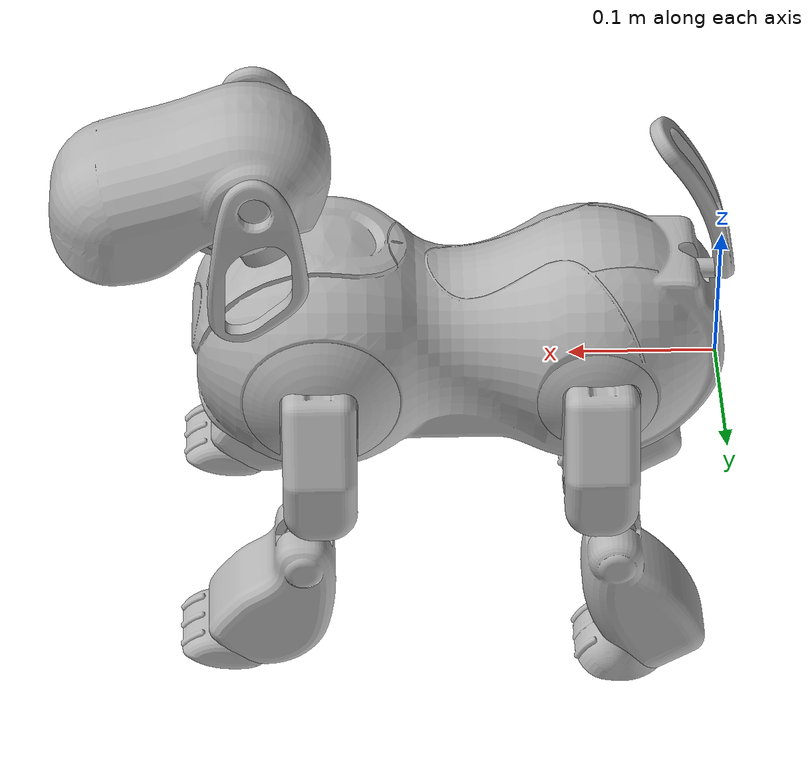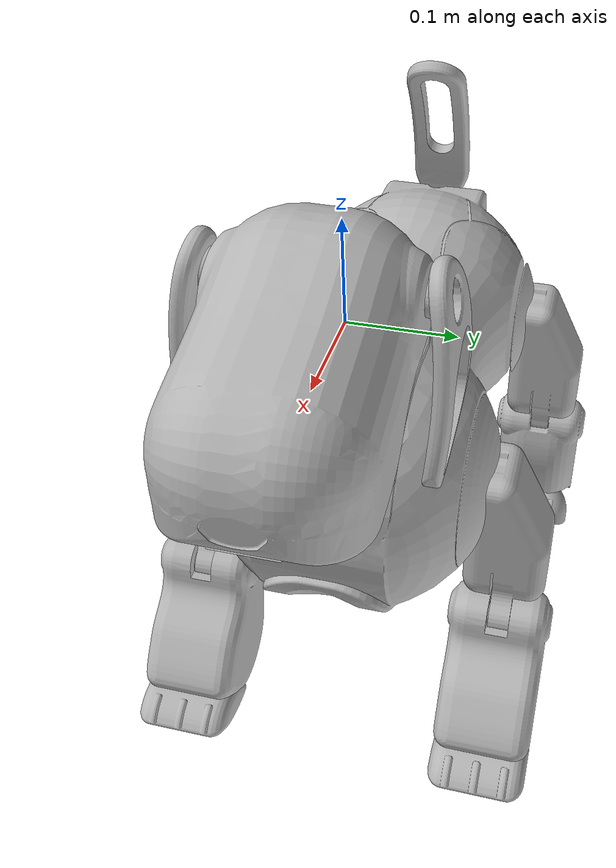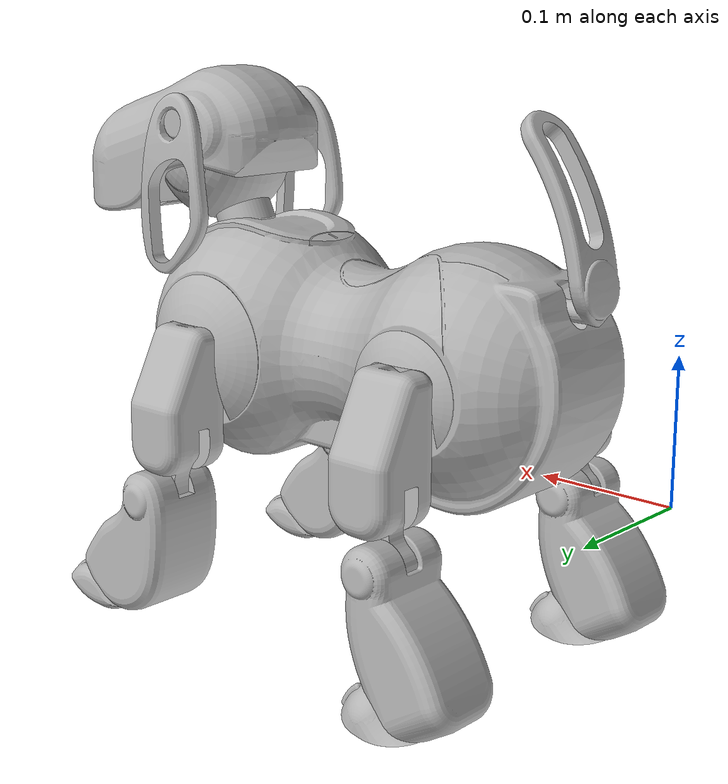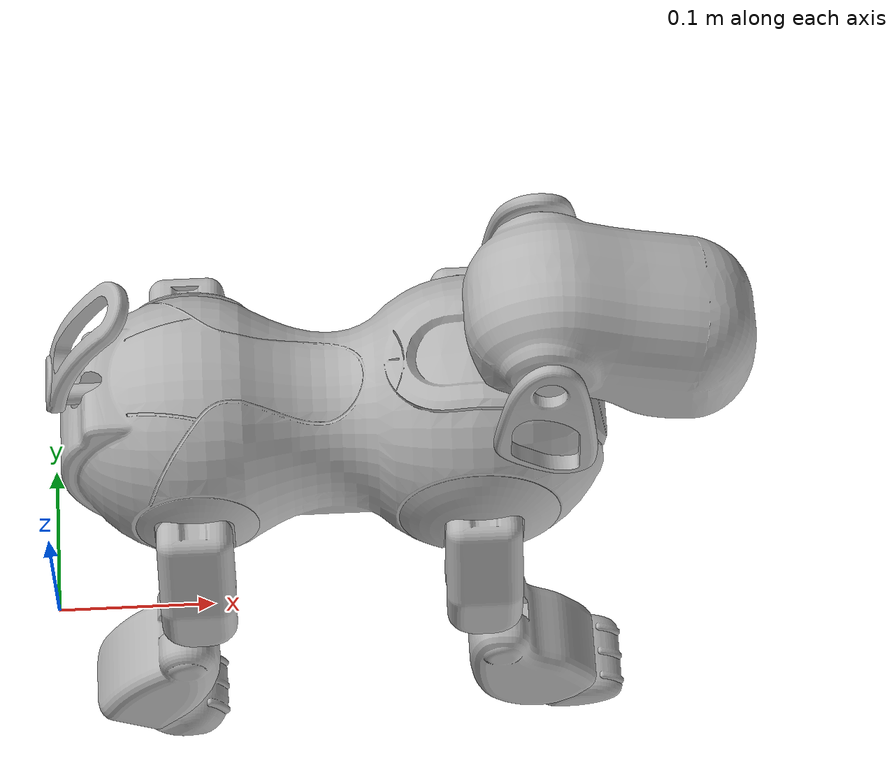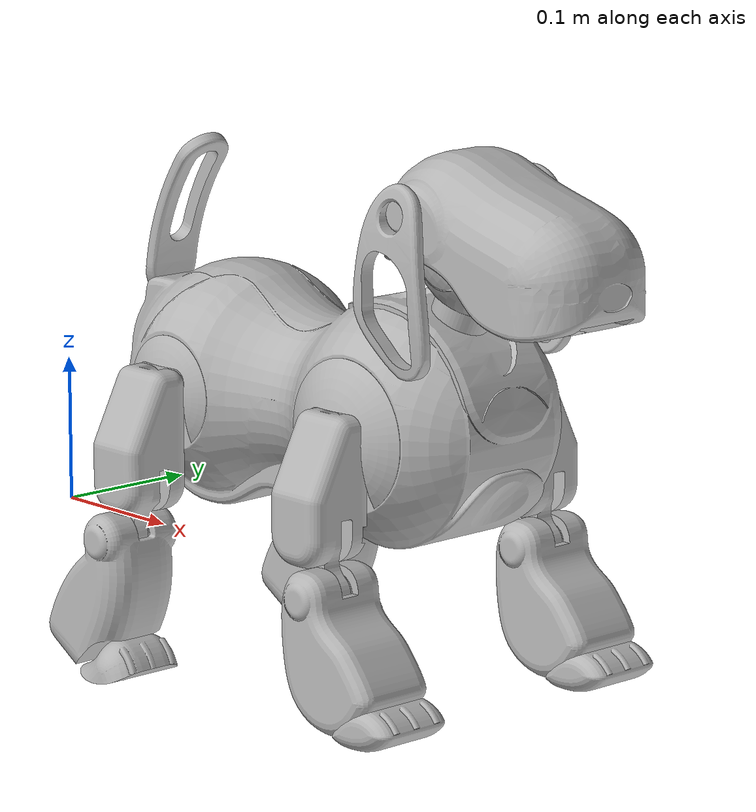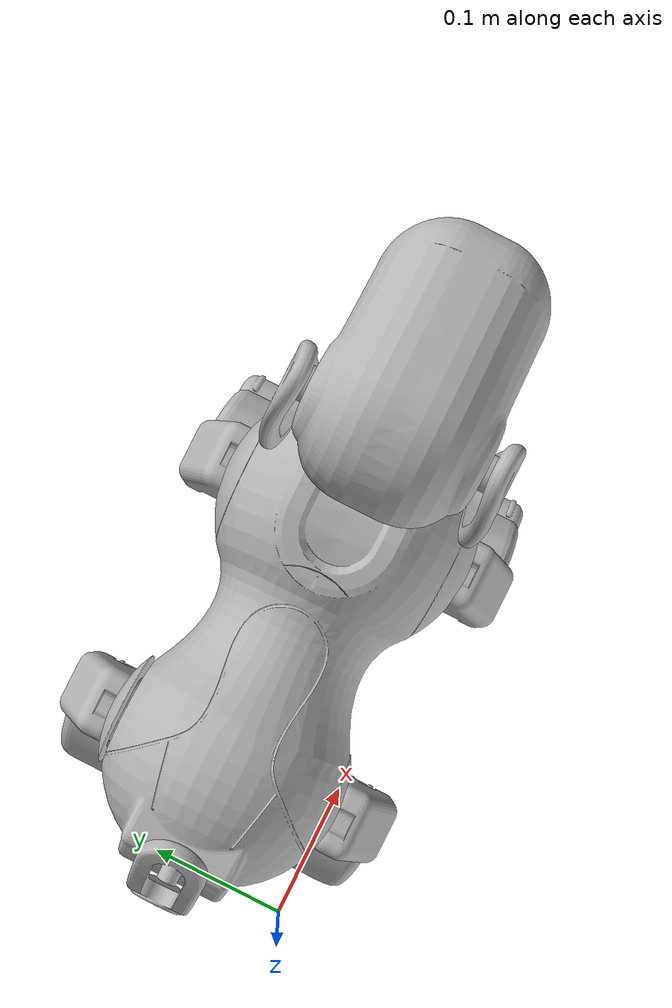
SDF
<sdf version='1.5'>
  <model name='aiboERS7'>
    <link name='body'>
      <pose>0 0 0 0 -0 0</pose>
      <inertial>
        <pose>0.175 0.08298 0.09 0 -0 0</pose>
        <mass>0.613</mass>
        <inertia>
          <ixx>0.00247501</ixx>
          <ixy>0</ixy>
          <ixz>0</ixz>
          <iyy>0.00750664</iyy>
          <iyz>0</iyz>
          <izz>0.0071137</izz>
        </inertia>
      </inertial>
      <collision name='body_collision'>
        <pose>0 0 0 0 -0 0</pose>
        <geometry>
          <mesh>
            <scale>1 1 1</scale>
            <uri>model://aiboers7_description/meshes/body_simple.stl</uri>
          </mesh>
        </geometry>
      </collision>
      <visual name='body_visual'>
        <pose>0 0 0 0 -0 0</pose>
        <geometry>
          <mesh>
            <scale>1 1 1</scale>
            <uri>model://aiboers7_description/meshes/body.STL</uri>
          </mesh>
        </geometry>
      </visual>
    </link>
    <link name='LB_shoulder'>
      <pose>0.09325 0.136 0.0892 0 -0 0</pose>
      <inertial>
        <pose>0.003468 0.001798 -0.009007 0 -0 0</pose>
        <mass>0.05</mass>
        <inertia>
          <ixx>2.21195e-05</ixx>
          <ixy>0</ixy>
          <ixz>0</ixz>
          <iyy>4.70686e-05</iyy>
          <iyz>0</iyz>
          <izz>2.55456e-05</izz>
        </inertia>
      </inertial>
      <collision name='LB_shoulder_collision'>
        <pose>-0.0395 0.02956 0.039 3.14159 -0 0</pose>
        <geometry>
          <mesh>
            <scale>1 1 1</scale>
            <uri>model://aiboers7_description/meshes/LB_shoulder_simple.stl</uri>
          </mesh>
        </geometry>
      </collision>
      <visual name='LB_shoulder_visual'>
        <pose>-0.0395 0.02956 0.039 3.14159 -0 0</pose>
        <geometry>
          <mesh>
            <scale>1 1 1</scale>
            <uri>model://aiboers7_description/meshes/LB_shoulder.STL</uri>
          </mesh>
        </geometry>
      </visual>
    </link>
    <joint name='legLB1' type='revolute'>
      <child>LB_shoulder</child>
      <parent>body</parent>
      <axis>
        <xyz>0 1 0</xyz>
        <limit>
          <lower>-2.3562</lower>
          <upper>2.0944</upper>
          <effort>1000</effort>
          <velocity>2.8143</velocity>
        </limit>
        <dynamics>
          <damping>200</damping>
          <friction>200</friction>
          <spring_reference>0</spring_reference>
          <spring_stiffness>0</spring_stiffness>
        </dynamics>
        <use_parent_model_frame>1</use_parent_model_frame>
      </axis>
    </joint>
    <link name='LB_leg1'>
      <pose>0.09325 0.15988 0.0892 0 -0 0</pose>
      <inertial>
        <pose>9e-06 0.002377 -0.010723 0 -0 0</pose>
        <mass>0.073</mass>
        <inertia>
          <ixx>0.000115605</ixx>
          <ixy>0</ixy>
          <ixz>0</ixz>
          <iyy>0.000115461</iyy>
          <iyz>0</iyz>
          <izz>3.01475e-05</izz>
        </inertia>
      </inertial>
      <collision name='LB_leg1_collision'>
        <pose>-0.0275 0.02686 0.0185 -3.14159 -0 0</pose>
        <geometry>
          <mesh>
            <scale>1 1 1</scale>
            <uri>model://aiboers7_description/meshes/LB_leg1_simple.stl</uri>
          </mesh>
        </geometry>
      </collision>
      <visual name='LB_leg1_visual'>
        <pose>-0.0275 0.02686 0.0185 -3.14159 -0 0</pose>
        <geometry>
          <mesh>
            <scale>1 1 1</scale>
            <uri>model://aiboers7_description/meshes/LB_leg1.STL</uri>
          </mesh>
        </geometry>
      </visual>
    </link>
    <joint name='legLB2' type='revolute'>
      <child>LB_leg1</child>
      <parent>LB_shoulder</parent>
      <axis>
        <xyz>1 0 0</xyz>
        <limit>
          <lower>-0.15708</lower>
          <upper>1.58825</upper>
          <effort>1000</effort>
          <velocity>2.498</velocity>
        </limit>
        <dynamics>
          <damping>200</damping>
          <friction>200</friction>
          <spring_reference>0</spring_reference>
          <spring_stiffness>0</spring_stiffness>
        </dynamics>
        <use_parent_model_frame>1</use_parent_model_frame>
      </axis>
    </joint>
    <link name='LB_leg2'>
      <pose>0.08074 0.18963 -0.00842 0 -0 0</pose>
      <inertial>
        <pose>-0.00457545 1.20482e-05 -0.017478 0 -0 0</pose>
        <mass>0.083</mass>
        <inertia>
          <ixx>0.000221664</ixx>
          <ixy>9.42755e-09</ixy>
          <ixz>-8.34367e-06</ixz>
          <iyy>0.000237324</iyy>
          <iyz>7.784e-08</iyz>
          <izz>0.000118535</izz>
        </inertia>
      </inertial>
      <collision name='LB_leg2_collision'>
        <pose>-0.0205 -0.0097 -0.0388 -3.14159 -0 0</pose>
        <geometry>
          <mesh>
            <scale>1 1 1</scale>
            <uri>model://aiboers7_description/meshes/B_leg2_simple.stl</uri>
          </mesh>
        </geometry>
      </collision>
      <collision name='LB_leg2_collision_LB_leg2_1'>
        <pose>-0.01381 -0.0095 -0.09363 0 -0 0</pose>
        <geometry>
          <sphere>
            <radius>0.01222</radius>
          </sphere>
        </geometry>
      </collision>
      <visual name='LB_leg2_visual'>
        <pose>-0.0127 0.0242 0.0125 -3.14159 -0 0</pose>
        <geometry>
          <mesh>
            <scale>1 1 1</scale>
            <uri>model://aiboers7_description/meshes/B_leg2.STL</uri>
          </mesh>
        </geometry>
      </visual>
      <visual name='LB_leg2_visual_LB_leg2_1'>
        <pose>-0.03831 0.0228 -0.06963 3.14159 -0 0</pose>
        <geometry>
          <mesh>
            <scale>1 1 1</scale>
            <uri>model://aiboers7_description/meshes/B_paw.STL</uri>
          </mesh>
        </geometry>
      </visual>
    </link>
    <joint name='legLB3' type='revolute'>
      <child>LB_leg2</child>
      <parent>LB_leg1</parent>
      <axis>
        <xyz>0 1 0</xyz>
        <limit>
          <lower>-0.5236</lower>
          <upper>2.2166</upper>
          <effort>1000</effort>
          <velocity>2.8361</velocity>
        </limit>
        <dynamics>
          <damping>200</damping>
          <friction>200</friction>
          <spring_reference>0</spring_reference>
          <spring_stiffness>0</spring_stiffness>
        </dynamics>
        <use_parent_model_frame>1</use_parent_model_frame>
      </axis>
    </joint>
    <link name='LF_shoulder'>
      <pose>0.2706 0.136 0.0892 0 -0 0</pose>
      <inertial>
        <pose>-0.001888 0.002933 0.008598 0 -0 0</pose>
        <mass>0.05</mass>
        <inertia>
          <ixx>4.07077e-05</ixx>
          <ixy>0</ixy>
          <ixz>0</ixz>
          <iyy>8.4078e-05</iyy>
          <iyz>0</iyz>
          <izz>4.5253e-05</izz>
        </inertia>
      </inertial>
      <collision name='LF_shoulder_collision'>
        <pose>-0.0002 0.0252 0.003 3.14159 -0 0</pose>
        <geometry>
          <mesh>
            <scale>1 1 1</scale>
            <uri>model://aiboers7_description/meshes/LF_shoulder_simple.stl</uri>
          </mesh>
        </geometry>
      </collision>
      <visual name='LF_shoulder_visual'>
        <pose>-0.052 0.0329 0.0509 3.14159 -0 0</pose>
        <geometry>
          <mesh>
            <scale>1 1 1</scale>
            <uri>model://aiboers7_description/meshes/LF_shoulder.STL</uri>
          </mesh>
        </geometry>
      </visual>
    </link>
    <joint name='legLF1' type='revolute'>
      <child>LF_shoulder</child>
      <parent>body</parent>
      <axis>
        <xyz>0 1 0</xyz>
        <limit>
          <lower>-2.0944</lower>
          <upper>2.3562</upper>
          <effort>1000</effort>
          <velocity>2.8143</velocity>
        </limit>
        <dynamics>
          <damping>200</damping>
          <friction>200</friction>
          <spring_reference>0</spring_reference>
          <spring_stiffness>0</spring_stiffness>
        </dynamics>
        <use_parent_model_frame>1</use_parent_model_frame>
      </axis>
    </joint>
    <link name='LF_leg1'>
      <pose>0.2706 0.1599 0.0892 0 -0 0</pose>
      <inertial>
        <pose>0.000343 0.001992 -0.011436 0 -0 0</pose>
        <mass>0.073</mass>
        <inertia>
          <ixx>0.000115662</ixx>
          <ixy>0</ixy>
          <ixz>0</ixz>
          <iyy>0.000114318</iyy>
          <iyz>0</iyz>
          <izz>2.8949e-05</izz>
        </inertia>
      </inertial>
      <collision name='LF_leg1_collision'>
        <pose>0.00107 0.0198 -0.0459 -3.14159 -0 0</pose>
        <geometry>
          <mesh>
            <scale>1 1 1</scale>
            <uri>model://aiboers7_description/meshes/LF_leg1_simple.stl</uri>
          </mesh>
        </geometry>
      </collision>
      <visual name='LF_leg1_visual'>
        <pose>-0.01293 0.0262 0.0184 -3.14159 -0 0</pose>
        <geometry>
          <mesh>
            <scale>1 1 1</scale>
            <uri>model://aiboers7_description/meshes/LF_leg1.STL</uri>
          </mesh>
        </geometry>
      </visual>
    </link>
    <joint name='legLF2' type='revolute'>
      <child>LF_leg1</child>
      <parent>LF_shoulder</parent>
      <axis>
        <xyz>1 0 0</xyz>
        <limit>
          <lower>-0.15708</lower>
          <upper>1.58825</upper>
          <effort>1000</effort>
          <velocity>2.8143</velocity>
        </limit>
        <dynamics>
          <damping>200</damping>
          <friction>200</friction>
          <spring_reference>0</spring_reference>
          <spring_stiffness>0</spring_stiffness>
        </dynamics>
        <use_parent_model_frame>1</use_parent_model_frame>
      </axis>
    </joint>
    <link name='LF_leg2'>
      <pose>0.28311 0.16509 -0.00842 0 -0 0</pose>
      <inertial>
        <pose>0.00119534 -1.14337e-05 -0.00284031 0 -0 0</pose>
        <mass>0.083</mass>
        <inertia>
          <ixx>0.000241868</ixx>
          <ixy>-5.69812e-09</ixy>
          <ixz>4.00122e-05</ixz>
          <iyy>0.00026196</iyy>
          <iyz>1.04374e-08</iyz>
          <izz>0.000100091</izz>
        </inertia>
      </inertial>
      <collision name='LF_leg2_collision'>
        <pose>-0.0127 0.04666 0.0125 -3.14159 -0 0</pose>
        <geometry>
          <mesh>
            <scale>1 1 1</scale>
            <uri>model://aiboers7_description/meshes/F_leg2_simple.stl</uri>
          </mesh>
        </geometry>
      </collision>
      <collision name='LF_leg2_collision_LF_leg2_1'>
        <pose>0.04522 0.0143 -0.08144 0 -0 0</pose>
        <geometry>
          <sphere>
            <radius>0.01222</radius>
          </sphere>
        </geometry>
      </collision>
      <visual name='LF_leg2_visual'>
        <pose>-0.0127 0.0466 0.0125 -3.14159 -0 0</pose>
        <geometry>
          <mesh>
            <scale>1 1 1</scale>
            <uri>model://aiboers7_description/meshes/F_leg2.STL</uri>
          </mesh>
        </geometry>
      </visual>
      <visual name='LF_leg2_visual_LF_leg2_1'>
        <pose>0.03282 0.0267 -0.06894 3.14159 -0 0</pose>
        <geometry>
          <mesh>
            <scale>1 1 1</scale>
            <uri>model://aiboers7_description/meshes/F_paw.STL</uri>
          </mesh>
        </geometry>
      </visual>
    </link>
    <joint name='legLF3' type='revolute'>
      <child>LF_leg2</child>
      <parent>LF_leg1</parent>
      <axis>
        <xyz>0 1 0</xyz>
        <limit>
          <lower>-0.5236</lower>
          <upper>2.2166</upper>
          <effort>1000</effort>
          <velocity>2.8361</velocity>
        </limit>
        <dynamics>
          <damping>200</damping>
          <friction>200</friction>
          <spring_reference>0</spring_reference>
          <spring_stiffness>0</spring_stiffness>
        </dynamics>
        <use_parent_model_frame>1</use_parent_model_frame>
      </axis>
    </joint>
    <link name='RB_shoulder'>
      <pose>0.09325 0.006 0.0892 0 -0 0</pose>
      <inertial>
        <pose>0.003468 -0.001798 -0.009007 0 -0 0</pose>
        <mass>0.05</mass>
        <inertia>
          <ixx>2.13278e-05</ixx>
          <ixy>0</ixy>
          <ixz>0</ixz>
          <iyy>4.68833e-05</iyy>
          <iyz>0</iyz>
          <izz>2.61584e-05</izz>
        </inertia>
      </inertial>
      <collision name='RB_shoulder_collision'>
        <pose>-0.0003 0.0017 0.0042 3.14159 -0 0</pose>
        <geometry>
          <mesh>
            <scale>1 1 1</scale>
            <uri>model://aiboers7_description/meshes/RB_shoulder_simple.stl</uri>
          </mesh>
        </geometry>
      </collision>
      <visual name='RB_shoulder_visual'>
        <pose>-0.0395 0.006 0.039 3.14159 -0 0</pose>
        <geometry>
          <mesh>
            <scale>1 1 1</scale>
            <uri>model://aiboers7_description/meshes/RB_shoulder.STL</uri>
          </mesh>
        </geometry>
      </visual>
    </link>
    <joint name='legRB1' type='revolute'>
      <child>RB_shoulder</child>
      <parent>body</parent>
      <axis>
        <xyz>0 1 0</xyz>
        <limit>
          <lower>-2.3562</lower>
          <upper>2.0944</upper>
          <effort>1000</effort>
          <velocity>2.8143</velocity>
        </limit>
        <dynamics>
          <damping>200</damping>
          <friction>200</friction>
          <spring_reference>0</spring_reference>
          <spring_stiffness>0</spring_stiffness>
        </dynamics>
        <use_parent_model_frame>1</use_parent_model_frame>
      </axis>
    </joint>
    <link name='RB_leg1'>
      <pose>0.09325 0.006 0.0892 0 -0 0</pose>
      <inertial>
        <pose>9e-06 -0.002377 -0.010723 0 -0 0</pose>
        <mass>0.073</mass>
        <inertia>
          <ixx>0.000117943</ixx>
          <ixy>0</ixy>
          <ixz>0</ixz>
          <iyy>0.000117596</iyy>
          <iyz>0</iyz>
          <izz>2.99438e-05</izz>
        </inertia>
      </inertial>
      <collision name='RB_leg1_collision'>
        <pose>-0.0029 -0.01955 -0.0451 -3.14159 -0 0</pose>
        <geometry>
          <mesh>
            <scale>1 1 1</scale>
            <uri>model://aiboers7_description/meshes/RB_leg1_simple.stl</uri>
          </mesh>
        </geometry>
      </collision>
      <visual name='RB_leg1_visual'>
        <pose>-0.0275 -0.013 0.0185 -3.14159 -0 0</pose>
        <geometry>
          <mesh>
            <scale>1 1 1</scale>
            <uri>model://aiboers7_description/meshes/RB_leg1.STL</uri>
          </mesh>
        </geometry>
      </visual>
    </link>
    <joint name='legRB2' type='revolute'>
      <child>RB_leg1</child>
      <parent>RB_shoulder</parent>
      <axis>
        <xyz>-1 0 0</xyz>
        <limit>
          <lower>-0.15708</lower>
          <upper>1.58825</upper>
          <effort>1000</effort>
          <velocity>2.498</velocity>
        </limit>
        <dynamics>
          <damping>200</damping>
          <friction>200</friction>
          <spring_reference>0</spring_reference>
          <spring_stiffness>0</spring_stiffness>
        </dynamics>
        <use_parent_model_frame>1</use_parent_model_frame>
      </axis>
    </joint>
    <link name='RB_leg2'>
      <pose>0.08074 -0.02311 -0.00842 0 -0 0</pose>
      <inertial>
        <pose>-0.00457545 0 -0.017478 0 -0 0</pose>
        <mass>0.083</mass>
        <inertia>
          <ixx>0.000221663</ixx>
          <ixy>0</ixy>
          <ixz>-8.34367e-06</ixz>
          <iyy>0.000237324</iyy>
          <iyz>0</iyz>
          <izz>0.000118535</izz>
        </inertia>
      </inertial>
      <collision name='RB_leg2_collision'>
        <pose>-0.0205 0.0088 -0.0388 -3.14159 -0 0</pose>
        <geometry>
          <mesh>
            <scale>1 1 1</scale>
            <uri>model://aiboers7_description/meshes/B_leg2_simple.stl</uri>
          </mesh>
        </geometry>
      </collision>
      <collision name='RB_leg2_collision_RB_leg2_1'>
        <pose>-0.01381 0.0097 -0.09363 0 -0 0</pose>
        <geometry>
          <sphere>
            <radius>0.01222</radius>
          </sphere>
        </geometry>
      </collision>
      <visual name='RB_leg2_visual'>
        <pose>-0.0127 0.0427 0.0125 -3.14159 -0 0</pose>
        <geometry>
          <mesh>
            <scale>1 1 1</scale>
            <uri>model://aiboers7_description/meshes/B_leg2.STL</uri>
          </mesh>
        </geometry>
      </visual>
      <visual name='RB_leg2_visual_RB_leg2_1'>
        <pose>-0.03831 0.042 -0.06963 3.14159 -0 0</pose>
        <geometry>
          <mesh>
            <scale>1 1 1</scale>
            <uri>model://aiboers7_description/meshes/B_paw.STL</uri>
          </mesh>
        </geometry>
      </visual>
    </link>
    <joint name='legRB3' type='revolute'>
      <child>RB_leg2</child>
      <parent>RB_leg1</parent>
      <axis>
        <xyz>0 1 0</xyz>
        <limit>
          <lower>-0.5236</lower>
          <upper>2.2166</upper>
          <effort>1000</effort>
          <velocity>2.8361</velocity>
        </limit>
        <dynamics>
          <damping>200</damping>
          <friction>200</friction>
          <spring_reference>0</spring_reference>
          <spring_stiffness>0</spring_stiffness>
        </dynamics>
        <use_parent_model_frame>1</use_parent_model_frame>
      </axis>
    </joint>
    <link name='RF_shoulder'>
      <pose>0.2706 0.006 0.0892 0 -0 0</pose>
      <inertial>
        <pose>-0.001888 -0.002933 0.008598 0 -0 0</pose>
        <mass>0.05</mass>
        <inertia>
          <ixx>4.44244e-05</ixx>
          <ixy>0</ixy>
          <ixz>0</ixz>
          <iyy>8.19969e-05</iyy>
          <iyz>0</iyz>
          <izz>3.93385e-05</izz>
        </inertia>
      </inertial>
      <collision name='RF_shoulder_collision'>
        <pose>-0.052 0.0059 -0.046 3.14159 -1.5707 -4.39666e-18</pose>
        <geometry>
          <mesh>
            <scale>1 1 1</scale>
            <uri>model://aiboers7_description/meshes/RF_shoulder_simple.stl</uri>
          </mesh>
        </geometry>
      </collision>
      <visual name='RF_shoulder_visual'>
        <pose>-0.052 0.0059 -0.046 3.14159 -1.5707 -4.39666e-18</pose>
        <geometry>
          <mesh>
            <scale>1 1 1</scale>
            <uri>model://aiboers7_description/meshes/RF_shoulder.STL</uri>
          </mesh>
        </geometry>
      </visual>
    </link>
    <joint name='legRF1' type='revolute'>
      <child>RF_shoulder</child>
      <parent>body</parent>
      <axis>
        <xyz>0 1 0</xyz>
        <limit>
          <lower>-2.0944</lower>
          <upper>2.3562</upper>
          <effort>1000</effort>
          <velocity>2.8143</velocity>
        </limit>
        <dynamics>
          <damping>200</damping>
          <friction>200</friction>
          <spring_reference>0</spring_reference>
          <spring_stiffness>0</spring_stiffness>
        </dynamics>
        <use_parent_model_frame>1</use_parent_model_frame>
      </axis>
    </joint>
    <link name='RF_leg1'>
      <pose>0.2706 0.006 0.0892 0 -0 0</pose>
      <inertial>
        <pose>0.000343 -0.001992 -0.011436 0 -0 0</pose>
        <mass>0.073</mass>
        <inertia>
          <ixx>0.000119697</ixx>
          <ixy>0</ixy>
          <ixz>0</ixz>
          <iyy>0.000117945</iyy>
          <iyz>0</iyz>
          <izz>2.93666e-05</izz>
        </inertia>
      </inertial>
      <collision name='RF_leg1_collision'>
        <pose>0.00117 -0.0199 -0.046 -3.14159 -0 0</pose>
        <geometry>
          <mesh>
            <scale>1 1 1</scale>
            <uri>model://aiboers7_description/meshes/RF_leg1_simple.stl</uri>
          </mesh>
        </geometry>
      </collision>
      <visual name='RF_leg1_visual'>
        <pose>-0.02303 0.0075 0.0185 -3.14159 -0 0</pose>
        <geometry>
          <mesh>
            <scale>1 1 1</scale>
            <uri>model://aiboers7_description/meshes/RF_leg1.STL</uri>
          </mesh>
        </geometry>
      </visual>
    </link>
    <joint name='legRF2' type='revolute'>
      <child>RF_leg1</child>
      <parent>RF_shoulder</parent>
      <axis>
        <xyz>-1 0 0</xyz>
        <limit>
          <lower>-0.15708</lower>
          <upper>1.58825</upper>
          <effort>1000</effort>
          <velocity>2.8143</velocity>
        </limit>
        <dynamics>
          <damping>200</damping>
          <friction>200</friction>
          <spring_reference>0</spring_reference>
          <spring_stiffness>0</spring_stiffness>
        </dynamics>
        <use_parent_model_frame>1</use_parent_model_frame>
      </axis>
    </joint>
    <link name='RF_leg2'>
      <pose>0.28311 -0.02311 -0.00842 0 -0 0</pose>
      <inertial>
        <pose>0.00119534 1.14337e-05 -0.00284031 0 -0 0</pose>
        <mass>0.083</mass>
        <inertia>
          <ixx>0.000241868</ixx>
          <ixy>5.69812e-09</ixy>
          <ixz>4.00122e-05</ixz>
          <iyy>0.00026196</iyy>
          <iyz>-1.04374e-08</iyz>
          <izz>0.000100091</izz>
        </inertia>
      </inertial>
      <collision name='RF_leg2_collision'>
        <pose>-0.0127 0.042 0.0125 -3.14159 -0 0</pose>
        <geometry>
          <mesh>
            <scale>1 1 1</scale>
            <uri>model://aiboers7_description/meshes/F_leg2_simple.stl</uri>
          </mesh>
        </geometry>
      </collision>
      <collision name='RF_leg2_collision_RF_leg2_1'>
        <pose>0.04522 0.0097 -0.08144 0 -0 0</pose>
        <geometry>
          <sphere>
            <radius>0.01222</radius>
          </sphere>
        </geometry>
      </collision>
      <visual name='RF_leg2_visual'>
        <pose>-0.0127 0.042 0.0125 -3.14159 -0 0</pose>
        <geometry>
          <mesh>
            <scale>1 1 1</scale>
            <uri>model://aiboers7_description/meshes/F_leg2.STL</uri>
          </mesh>
        </geometry>
      </visual>
      <visual name='RF_leg2_visual_RF_leg2_1'>
        <pose>0.03282 0.0221 -0.06894 3.14159 -0 0</pose>
        <geometry>
          <mesh>
            <scale>1 1 1</scale>
            <uri>model://aiboers7_description/meshes/F_paw.STL</uri>
          </mesh>
        </geometry>
      </visual>
    </link>
    <joint name='legRF3' type='revolute'>
      <child>RF_leg2</child>
      <parent>RF_leg1</parent>
      <axis>
        <xyz>0 1 0</xyz>
        <limit>
          <lower>-0.5236</lower>
          <upper>2.2166</upper>
          <effort>1000</effort>
          <velocity>2.8361</velocity>
        </limit>
        <dynamics>
          <damping>200</damping>
          <friction>200</friction>
          <spring_reference>0</spring_reference>
          <spring_stiffness>0</spring_stiffness>
        </dynamics>
        <use_parent_model_frame>1</use_parent_model_frame>
      </axis>
    </joint>
    <link name='neck'>
      <pose>0.2706 0.08302 0.0892 0 -0 0</pose>
      <inertial>
        <pose>-0.000341 -0 -0.008011 0 -0 0</pose>
        <mass>0.015</mass>
        <inertia>
          <ixx>1.97e-06</ixx>
          <ixy>0</ixy>
          <ixz>0</ixz>
          <iyy>1.97e-06</iyy>
          <iyz>0</iyz>
          <izz>1.688e-06</izz>
        </inertia>
      </inertial>
      <collision name='neck_collision'>
        <pose>0.0460575 -6e-05 0.101875 0 0.44506 0</pose>
        <geometry>
          <cylinder>
            <length>0.03</length>
            <radius>0.015</radius>
          </cylinder>
        </geometry>
      </collision>
      <visual name='neck_visual'>
        <pose>0.120935 -0.0471 0.116054 3.14159 -0.890118 3.14159</pose>
        <geometry>
          <mesh>
            <scale>1 1 1</scale>
            <uri>model://aiboers7_description/meshes/neck.STL</uri>
          </mesh>
        </geometry>
      </visual>
    </link>
    <joint name='neck_joint' type='revolute'>
      <child>neck</child>
      <parent>body</parent>
      <axis>
        <xyz>0 -1 0</xyz>
        <limit>
          <lower>-0.925</lower>
          <upper>0.524</upper>
          <effort>1000</effort>
          <velocity>3.0107</velocity>
        </limit>
        <dynamics>
          <damping>200</damping>
          <friction>200</friction>
          <spring_reference>0</spring_reference>
          <spring_stiffness>0</spring_stiffness>
        </dynamics>
        <use_parent_model_frame>1</use_parent_model_frame>
      </axis>
    </joint>
    <link name='bulb'>
      <pose>0.3252 0.08302 0.2122 0 -0 0</pose>
      <inertial>
        <pose>0 0 0 0 -0 0</pose>
        <mass>0.01</mass>
        <inertia>
          <ixx>8.72e-06</ixx>
          <ixy>0</ixy>
          <ixz>0</ixz>
          <iyy>8.72e-06</iyy>
          <iyz>0</iyz>
          <izz>8.72e-06</izz>
        </inertia>
      </inertial>
      <collision name='bulb_collision'>
        <pose>0 0 0 0 -0 0</pose>
        <geometry>
          <sphere>
            <radius>0.04669</radius>
          </sphere>
        </geometry>
      </collision>
      <visual name='bulb_visual'>
        <pose>0 0 0 0 -0 0</pose>
        <geometry>
          <sphere>
            <radius>0.04</radius>
          </sphere>
        </geometry>
      </visual>
    </link>
    <joint name='headTilt' type='revolute'>
      <child>bulb</child>
      <parent>neck</parent>
      <axis>
        <xyz>0 1 0</xyz>
        <limit>
          <lower>-0.349</lower>
          <upper>0.8727</upper>
          <effort>1000</effort>
          <velocity>3.0107</velocity>
        </limit>
        <dynamics>
          <damping>200</damping>
          <friction>200</friction>
          <spring_reference>0</spring_reference>
          <spring_stiffness>0</spring_stiffness>
        </dynamics>
        <use_parent_model_frame>1</use_parent_model_frame>
      </axis>
    </joint>
    <link name='head'>
      <pose>0.3252 0.08302 0.2122 0 0.44506 0</pose>
      <inertial>
        <pose>0.010005 -1.13731e-06 1.63149e-06 0 -0.44506 0</pose>
        <mass>0.19001</mass>
        <inertia>
          <ixx>0.000357226</ixx>
          <ixy>2.58516e-09</ixy>
          <ixz>1.28005e-08</ixz>
          <iyy>0.00068135</iyy>
          <iyz>-3.37026e-10</iyz>
          <izz>0.000681141</izz>
        </inertia>
      </inertial>
      <collision name='head_collision'>
        <pose>-0.09 0.053 0.03 3.14159 -0.44506 0</pose>
        <geometry>
          <mesh>
            <scale>1 1 1</scale>
            <uri>model://aiboers7_description/meshes/head_simple.stl</uri>
          </mesh>
        </geometry>
      </collision>
      <collision name='head_collision_head_1'>
        <pose>0.105 -0.00261 0.031 0 -0.44506 0</pose>
        <geometry>
          <box>
            <size>0.01 0.01 0.01</size>
          </box>
        </geometry>
      </collision>
      <visual name='head_visual'>
        <pose>-0.09 0.053 0.03 3.14159 -0.44506 0</pose>
        <geometry>
          <mesh>
            <scale>1 1 1</scale>
            <uri>model://aiboers7_description/meshes/head.STL</uri>
          </mesh>
        </geometry>
      </visual>
      <visual name='head_visual_head_1'>
        <pose>0.105 -0.00261 0.031 0 -0.44506 0</pose>
        <geometry>
          <box>
            <size>0.01 0.01 0.01</size>
          </box>
        </geometry>
      </visual>
      <gravity>1</gravity>
      <velocity_decay/>
      <self_collide>0</self_collide>
      <sensor name='camera_aibo' type='camera'>
        <update_rate>30</update_rate>
        <camera name='head'>
          <horizontal_fov>0.993092</horizontal_fov>
          <image>
            <width>416</width>
            <height>320</height>
            <format>R8G8B8</format>
          </image>
          <clip>
            <near>0.01</near>
            <far>50</far>
          </clip>
          <noise>
            <type>gaussian</type>
            <mean>0</mean>
            <stddev>0.007</stddev>
          </noise>
        </camera>
        <plugin name='camera_controller' filename='libgazebo_ros_camera.so'>
          <alwaysOn>true</alwaysOn>
          <updateRate>0.0</updateRate>
          <cameraName>aiboers7/head/camera_aibo</cameraName>
          <imageTopicName>image_raw</imageTopicName>
          <cameraInfoTopicName>camera_info</cameraInfoTopicName>
          <frameName>camera_link</frameName>
          <hackBaseline>0.07</hackBaseline>
          <distortionK1>0.0</distortionK1>
          <distortionK2>0.0</distortionK2>
          <distortionK3>0.0</distortionK3>
          <distortionT1>0.0</distortionT1>
          <distortionT2>0.0</distortionT2>
        </plugin>
        <pose>0.105 -0.00261 0.031 0 -0.44506 0</pose>
      </sensor>
    </link>
    <joint name='headPan' type='revolute'>
      <child>head</child>
      <parent>bulb</parent>
      <axis>
        <xyz>0.430512 0 0.902585</xyz>
        <limit>
          <lower>-1.6232</lower>
          <upper>1.6232</upper>
          <effort>1000</effort>
          <velocity>3.0107</velocity>
        </limit>
        <dynamics>
          <damping>200</damping>
          <friction>200</friction>
          <spring_reference>0</spring_reference>
          <spring_stiffness>0</spring_stiffness>
        </dynamics>
        <use_parent_model_frame>1</use_parent_model_frame>
      </axis>
    </joint>
    <link name='L_ear_prev'>
      <pose>0.310211 0.14602 0.236522 0 0.44506 0</pose>
      <inertial>
        <pose>0 0 0 0 -0 0</pose>
        <mass>0.0001</mass>
        <inertia>
          <ixx>2.2e-09</ixx>
          <ixy>0</ixy>
          <ixz>0</ixz>
          <iyy>4.05e-09</iyy>
          <iyz>0</iyz>
          <izz>2.2e-09</izz>
        </inertia>
      </inertial>
      <collision name='L_ear_prev_collision'>
        <pose>0 -0.0072 0 1.5707 -0.44506 0</pose>
        <geometry>
          <cylinder>
            <length>0.0035</length>
            <radius>0.009</radius>
          </cylinder>
        </geometry>
      </collision>
      <visual name='L_ear_prev_visual'>
        <pose>0 -0.0072 0 1.5707 -0.44506 0</pose>
        <geometry>
          <cylinder>
            <length>0.0035</length>
            <radius>0.009</radius>
          </cylinder>
        </geometry>
      </visual>
    </link>
    <joint name='L_ear_tilt' type='revolute'>
      <child>L_ear_prev</child>
      <parent>head</parent>
      <axis>
        <xyz>0 -1 0</xyz>
        <limit>
          <lower>-0.52359</lower>
          <upper>0.5236</upper>
          <effort>1000</effort>
          <velocity>1000</velocity>
        </limit>
        <dynamics>
          <damping>1</damping>
          <friction>1</friction>
          <spring_reference>0</spring_reference>
          <spring_stiffness>0</spring_stiffness>
        </dynamics>
        <use_parent_model_frame>1</use_parent_model_frame>
      </axis>
    </joint>
    <link name='L_ear'>
      <pose>0.310211 0.14602 0.236522 0 -0 0</pose>
      <inertial>
        <pose>0.002373 -0.001406 -0.004885 0 -0 0</pose>
        <mass>0.005</mass>
        <inertia>
          <ixx>6.28381e-06</ixx>
          <ixy>0</ixy>
          <ixz>0</ixz>
          <iyy>7.96821e-06</iyy>
          <iyz>0</iyz>
          <izz>1.91652e-06</izz>
        </inertia>
      </inertial>
      <collision name='L_ear_collision'>
        <pose>-0.0409 0.0127 0.028 3.14159 -0 0</pose>
        <geometry>
          <mesh>
            <scale>1 1 1</scale>
            <uri>model://aiboers7_description/meshes/L_ear_simple.stl</uri>
          </mesh>
        </geometry>
      </collision>
      <visual name='L_ear_visual'>
        <pose>-0.0409 0.0127 0.028 3.14159 -0 0</pose>
        <geometry>
          <mesh>
            <scale>1 1 1</scale>
            <uri>model://aiboers7_description/meshes/L_ear.STL</uri>
          </mesh>
        </geometry>
      </visual>
    </link>
    <joint name='L_ear_joint' type='revolute'>
      <child>L_ear</child>
      <parent>L_ear_prev</parent>
      <axis>
        <xyz>1 0 0</xyz>
        <limit>
          <lower>0</lower>
          <upper>0.35</upper>
          <effort>1000</effort>
          <velocity>1000</velocity>
        </limit>
        <dynamics>
          <damping>200</damping>
          <friction>200</friction>
          <spring_reference>0</spring_reference>
          <spring_stiffness>0</spring_stiffness>
        </dynamics>
        <use_parent_model_frame>1</use_parent_model_frame>
      </axis>
    </joint>
    <link name='R_ear_prev'>
      <pose>0.310211 0.02002 0.236522 0 0.44506 0</pose>
      <inertial>
        <pose>0 0 0 0 -0 0</pose>
        <mass>0.0001</mass>
        <inertia>
          <ixx>2.2e-09</ixx>
          <ixy>0</ixy>
          <ixz>0</ixz>
          <iyy>4.05e-09</iyy>
          <iyz>0</iyz>
          <izz>2.2e-09</izz>
        </inertia>
      </inertial>
      <collision name='R_ear_prev_collision'>
        <pose>0 0.002 0 1.5707 -0.44506 0</pose>
        <geometry>
          <cylinder>
            <length>0.0035</length>
            <radius>0.009</radius>
          </cylinder>
        </geometry>
      </collision>
      <visual name='R_ear_prev_visual'>
        <pose>0 0.002 0 1.5707 -0.44506 0</pose>
        <geometry>
          <cylinder>
            <length>0.0035</length>
            <radius>0.009</radius>
          </cylinder>
        </geometry>
      </visual>
    </link>
    <joint name='R_ear_tilt' type='revolute'>
      <child>R_ear_prev</child>
      <parent>head</parent>
      <axis>
        <xyz>0 1 0</xyz>
        <limit>
          <lower>-0.52359</lower>
          <upper>0.5236</upper>
          <effort>1000</effort>
          <velocity>1000</velocity>
        </limit>
        <dynamics>
          <damping>1</damping>
          <friction>1</friction>
          <spring_reference>0</spring_reference>
          <spring_stiffness>0</spring_stiffness>
        </dynamics>
        <use_parent_model_frame>1</use_parent_model_frame>
      </axis>
    </joint>
    <link name='R_ear'>
      <pose>0.310211 0.02002 0.236522 0 -0 0</pose>
      <inertial>
        <pose>0.002373 0.001406 -0.004885 0 -0 0</pose>
        <mass>0.005</mass>
        <inertia>
          <ixx>5.88377e-06</ixx>
          <ixy>0</ixy>
          <ixz>0</ixz>
          <iyy>7.44017e-06</iyy>
          <iyz>0</iyz>
          <izz>1.79111e-06</izz>
        </inertia>
      </inertial>
      <collision name='R_ear_collision'>
        <pose>-0.0409 0.06 0.028 3.14159 -0 0</pose>
        <geometry>
          <mesh>
            <scale>1 1 1</scale>
            <uri>model://aiboers7_description/meshes/R_ear_simple.stl</uri>
          </mesh>
        </geometry>
      </collision>
      <visual name='R_ear_visual'>
        <pose>-0.0409 0.06 0.028 3.14159 -0 0</pose>
        <geometry>
          <mesh>
            <scale>1 1 1</scale>
            <uri>model://aiboers7_description/meshes/R_ear.STL</uri>
          </mesh>
        </geometry>
      </visual>
    </link>
    <joint name='R_ear_joint' type='revolute'>
      <child>R_ear</child>
      <parent>R_ear_prev</parent>
      <axis>
        <xyz>-1 0 0</xyz>
        <limit>
          <lower>0</lower>
          <upper>0.35</upper>
          <effort>1000</effort>
          <velocity>1000</velocity>
        </limit>
        <dynamics>
          <damping>200</damping>
          <friction>200</friction>
          <spring_reference>0</spring_reference>
          <spring_stiffness>0</spring_stiffness>
        </dynamics>
        <use_parent_model_frame>1</use_parent_model_frame>
      </axis>
    </joint>
    <link name='mouth'>
      <pose>0.373426 0.08302 0.192521 0 -0 0</pose>
      <inertial>
        <pose>0 0 0 0 -0 0</pose>
        <mass>0.0001</mass>
        <inertia>
          <ixx>1.31502e-08</ixx>
          <ixy>0</ixy>
          <ixz>0</ixz>
          <iyy>3.51055e-08</iyy>
          <iyz>0</iyz>
          <izz>4.11449e-08</izz>
        </inertia>
      </inertial>
      <collision name='mouth_collision'>
        <pose>-0.002 0.0145 -0.002 3.14159 -0 0</pose>
        <geometry>
          <mesh>
            <scale>1 1 1</scale>
            <uri>model://aiboers7_description/meshes/mouth_simple.stl</uri>
          </mesh>
        </geometry>
      </collision>
      <visual name='mouth_visual'>
        <pose>-0.002 0.0145 -0.002 3.14159 -0 0</pose>
        <geometry>
          <mesh>
            <scale>1 1 1</scale>
            <uri>model://aiboers7_description/meshes/mouth.STL</uri>
          </mesh>
        </geometry>
      </visual>
    </link>
    <joint name='mouth_joint' type='revolute'>
      <child>mouth</child>
      <parent>head</parent>
      <axis>
        <xyz>0 1 0</xyz>
        <limit>
          <lower>0</lower>
          <upper>1.0472</upper>
          <effort>1</effort>
          <velocity>1</velocity>
        </limit>
        <dynamics>
          <damping>200</damping>
          <friction>200</friction>
          <spring_reference>0</spring_reference>
          <spring_stiffness>0</spring_stiffness>
        </dynamics>
        <use_parent_model_frame>1</use_parent_model_frame>
      </axis>
    </joint>
    <link name='tail_base'>
      <pose>0.0391 0.08298 0.1402 0 -0 0</pose>
      <inertial>
        <pose>0 0 0 0 -0 0</pose>
        <mass>0.0001</mass>
        <inertia>
          <ixx>6.126e-10</ixx>
          <ixy>0</ixy>
          <ixz>0</ixz>
          <iyy>3.64e-09</iyy>
          <iyz>0</iyz>
          <izz>3.64e-09</izz>
        </inertia>
      </inertial>
      <collision name='tail_base_collision'>
        <pose>0 0 0 3.14159 1.57079 3.14159</pose>
        <geometry>
          <cylinder>
            <length>0.02</length>
            <radius>0.0035</radius>
          </cylinder>
        </geometry>
      </collision>
      <visual name='tail_base_visual'>
        <pose>0 0 0 3.14159 1.57079 3.14159</pose>
        <geometry>
          <cylinder>
            <length>0.02</length>
            <radius>0.0035</radius>
          </cylinder>
        </geometry>
      </visual>
    </link>
    <joint name='tailPan' type='revolute'>
      <child>tail_base</child>
      <parent>body</parent>
      <axis>
        <xyz>1 0 0</xyz>
        <limit>
          <lower>-1.0472</lower>
          <upper>1.0472</upper>
          <effort>1000</effort>
          <velocity>4.4724</velocity>
        </limit>
        <dynamics>
          <damping>200</damping>
          <friction>200</friction>
          <spring_reference>0</spring_reference>
          <spring_stiffness>0</spring_stiffness>
        </dynamics>
        <use_parent_model_frame>1</use_parent_model_frame>
      </axis>
    </joint>
    <link name='tail'>
      <pose>0.0141 0.08298 0.1402 0 -0 0</pose>
      <inertial>
        <pose>-0.008924 2e-06 0.006188 0 -0 0</pose>
        <mass>0.001</mass>
        <inertia>
          <ixx>1.32379e-07</ixx>
          <ixy>0</ixy>
          <ixz>0</ixz>
          <iyy>1.45469e-07</iyy>
          <iyz>0</iyz>
          <izz>3.95881e-08</izz>
        </inertia>
      </inertial>
      <collision name='tail_collision'>
        <pose>-0.015 0.0248 0.115 3.14159 -0 0</pose>
        <geometry>
          <mesh>
            <scale>1 1 1</scale>
            <uri>model://aiboers7_description/meshes/tail_simple.stl</uri>
          </mesh>
        </geometry>
      </collision>
      <visual name='tail_visual'>
        <pose>-0.015 0.0248 0.115 3.14159 -0 0</pose>
        <geometry>
          <mesh>
            <scale>1 1 1</scale>
            <uri>model://aiboers7_description/meshes/tail.STL</uri>
          </mesh>
        </geometry>
      </visual>
    </link>
    <joint name='tailTilt' type='revolute'>
      <child>tail</child>
      <parent>tail_base</parent>
      <axis>
        <xyz>0 1 0</xyz>
        <limit>
          <lower>0</lower>
          <upper>0.2618</upper>
          <effort>1000</effort>
          <velocity>4.4724</velocity>
        </limit>
        <dynamics>
          <damping>200</damping>
          <friction>200</friction>
          <spring_reference>0</spring_reference>
          <spring_stiffness>0</spring_stiffness>
        </dynamics>
        <use_parent_model_frame>1</use_parent_model_frame>
      </axis>
    </joint>
    <plugin name='gazebo_ros_control' filename='libgazebo_ros_control.so'>
      <robotNamespace>aiboers7_controller_manager</robotNamespace>
    </plugin>
    <static>0</static>
  </model>
</sdf>
